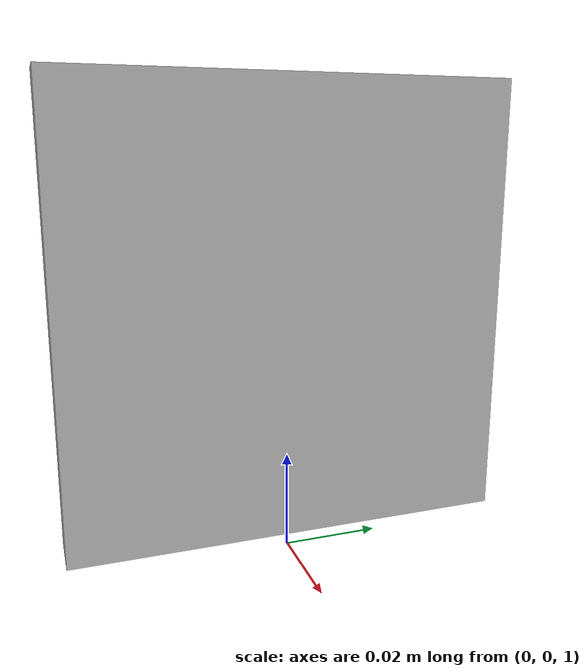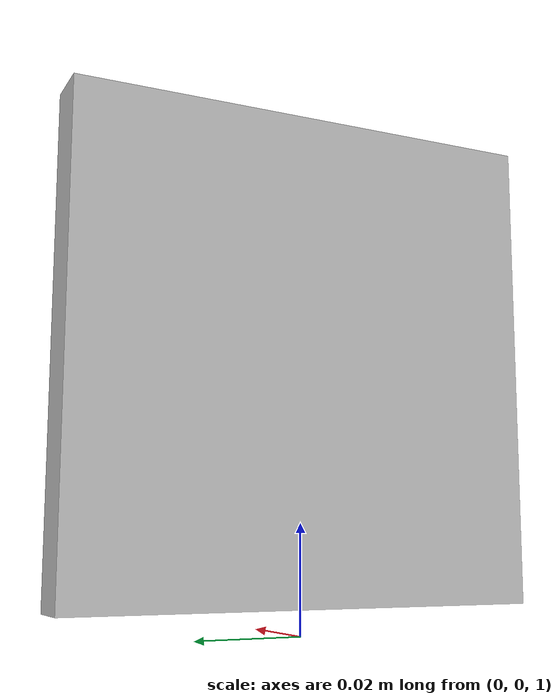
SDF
<?xml version='1.0'?>
<sdf version='1.4'>
  <model name="1234_tag">
    <static>true</static>
    <pose>0 0 0 0 0 0</pose>

    <link name="1234_tag">
      <pose>0 0 1.05 1.57 3.14 -1.57</pose>
      <visual name="mat">
        <geometry>
          <mesh>
            <uri>model://1234tag/1234tag.dae</uri>
          </mesh>
        </geometry>
      </visual>
    </link>

  </model>
</sdf>
